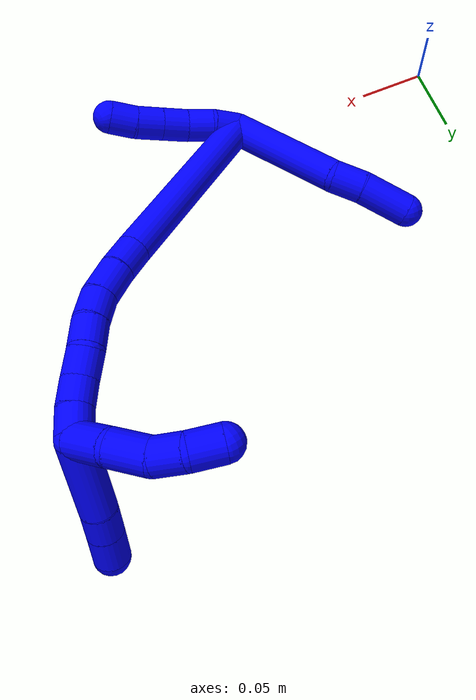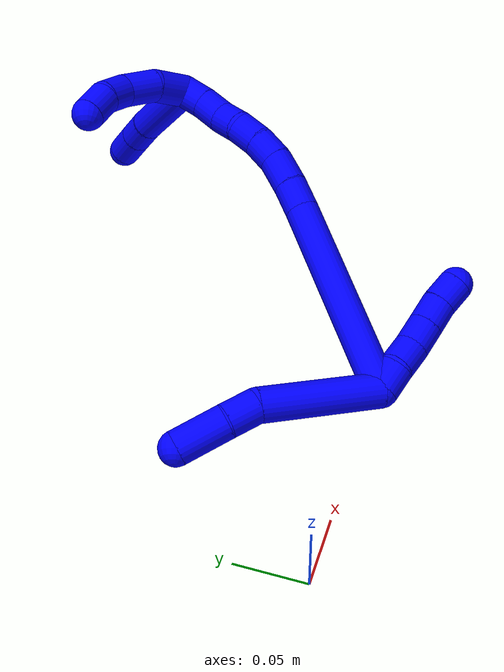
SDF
<sdf version="1.7">
 <world name="default">
  <model name="1">
   <static>0</static>
   <link name="1">
    <collision name="collision-cylinder-e_1_2_8">
     <pose>-0.04181 0.01003 -0.0115 -2.42441 -1.22085 2.15789</pose>
     <geometry><cylinder><radius>0.0125</radius><length>0.089016</length></cylinder></geometry>
     <surface>
      <friction><ode><mu>1.16</mu><mu2>1.16</mu2><slip1>0</slip1><slip2>0</slip2></ode></friction>
      <contact><ode><kp>1e+06</kp><kd>1</kd><max_vel>0</max_vel><min_depth>0.001</min_depth></ode></contact>
     </surface>
    </collision>
    <visual name="visual-cylinder-e_1_2_8">
     <pose>-0.04181 0.01003 -0.0115 -2.42441 -1.22085 2.15789</pose>
     <geometry><cylinder><radius>0.0125</radius><length>0.089016</length></cylinder></geometry>
     <material><ambient>0 0 1 1</ambient></material>
    </visual>
    <collision name="collision-cylinder-e_2_8_9">
     <pose>-0.092787 0.023811 -0.029449 -2.6146 -0.887606 2.10936</pose>
     <geometry><cylinder><radius>0.0125</radius><length>0.023637</length></cylinder></geometry>
     <surface>
      <friction><ode><mu>1.16</mu><mu2>1.16</mu2><slip1>0</slip1><slip2>0</slip2></ode></friction>
      <contact><ode><kp>1e+06</kp><kd>1</kd><max_vel>0</max_vel><min_depth>0.001</min_depth></ode></contact>
     </surface>
    </collision>
    <visual name="visual-cylinder-e_2_8_9">
     <pose>-0.092787 0.023811 -0.029449 -2.6146 -0.887606 2.10936</pose>
     <geometry><cylinder><radius>0.0125</radius><length>0.023637</length></cylinder></geometry>
     <material><ambient>0 0 1 1</ambient></material>
    </visual>
    <collision name="collision-cylinder-e_3_9_6">
     <pose>-0.115533 0.035906 -0.045628 -2.43286 -0.814294 1.72341</pose>
     <geometry><cylinder><radius>0.0125</radius><length>0.037347</length></cylinder></geometry>
     <surface>
      <friction><ode><mu>1.16</mu><mu2>1.16</mu2><slip1>0</slip1><slip2>0</slip2></ode></friction>
      <contact><ode><kp>1e+06</kp><kd>1</kd><max_vel>0</max_vel><min_depth>0.001</min_depth></ode></contact>
     </surface>
    </collision>
    <visual name="visual-cylinder-e_3_9_6">
     <pose>-0.115533 0.035906 -0.045628 -2.43286 -0.814294 1.72341</pose>
     <geometry><cylinder><radius>0.0125</radius><length>0.037347</length></cylinder></geometry>
     <material><ambient>0 0 1 1</ambient></material>
    </visual>
    <collision name="collision-cylinder-e_1_2_10">
     <pose>0.004303 -0.002927 0.008539 0.330256 0.444789 0.075333</pose>
     <geometry><cylinder><radius>0.0125</radius><length>0.02</length></cylinder></geometry>
     <surface>
      <friction><ode><mu>1.16</mu><mu2>1.16</mu2><slip1>0</slip1><slip2>0</slip2></ode></friction>
      <contact><ode><kp>1e+06</kp><kd>1</kd><max_vel>0</max_vel><min_depth>0.001</min_depth></ode></contact>
     </surface>
    </collision>
    <visual name="visual-cylinder-e_1_2_10">
     <pose>0.004303 -0.002927 0.008539 0.330256 0.444789 0.075333</pose>
     <geometry><cylinder><radius>0.0125</radius><length>0.02</length></cylinder></geometry>
     <material><ambient>0 0 1 1</ambient></material>
    </visual>
    <collision name="collision-cylinder-e_2_10_11">
     <pose>0.014051 -0.006655 0.025427 0.095513 0.575843 0.028306</pose>
     <geometry><cylinder><radius>0.0125</radius><length>0.02</length></cylinder></geometry>
     <surface>
      <friction><ode><mu>1.16</mu><mu2>1.16</mu2><slip1>0</slip1><slip2>0</slip2></ode></friction>
      <contact><ode><kp>1e+06</kp><kd>1</kd><max_vel>0</max_vel><min_depth>0.001</min_depth></ode></contact>
     </surface>
    </collision>
    <visual name="visual-cylinder-e_2_10_11">
     <pose>0.014051 -0.006655 0.025427 0.095513 0.575843 0.028306</pose>
     <geometry><cylinder><radius>0.0125</radius><length>0.02</length></cylinder></geometry>
     <material><ambient>0 0 1 1</ambient></material>
    </visual>
    <collision name="collision-cylinder-e_3_11_12">
     <pose>0.023944 -0.009445 0.042509 0.22414 0.460946 0.052802</pose>
     <geometry><cylinder><radius>0.0125</radius><length>0.02</length></cylinder></geometry>
     <surface>
      <friction><ode><mu>1.16</mu><mu2>1.16</mu2><slip1>0</slip1><slip2>0</slip2></ode></friction>
      <contact><ode><kp>1e+06</kp><kd>1</kd><max_vel>0</max_vel><min_depth>0.001</min_depth></ode></contact>
     </surface>
    </collision>
    <visual name="visual-cylinder-e_3_11_12">
     <pose>0.023944 -0.009445 0.042509 0.22414 0.460946 0.052802</pose>
     <geometry><cylinder><radius>0.0125</radius><length>0.02</length></cylinder></geometry>
     <material><ambient>0 0 1 1</ambient></material>
    </visual>
    <collision name="collision-cylinder-e_4_12_13">
     <pose>0.032738 -0.013483 0.060012 0.229343 0.449555 0.052656</pose>
     <geometry><cylinder><radius>0.0125</radius><length>0.02</length></cylinder></geometry>
     <surface>
      <friction><ode><mu>1.16</mu><mu2>1.16</mu2><slip1>0</slip1><slip2>0</slip2></ode></friction>
      <contact><ode><kp>1e+06</kp><kd>1</kd><max_vel>0</max_vel><min_depth>0.001</min_depth></ode></contact>
     </surface>
    </collision>
    <visual name="visual-cylinder-e_4_12_13">
     <pose>0.032738 -0.013483 0.060012 0.229343 0.449555 0.052656</pose>
     <geometry><cylinder><radius>0.0125</radius><length>0.02</length></cylinder></geometry>
     <material><ambient>0 0 1 1</ambient></material>
    </visual>
    <collision name="collision-cylinder-e_5_13_5">
     <pose>0.042293 -0.018574 0.076757 0.36461 0.548012 0.103541</pose>
     <geometry><cylinder><radius>0.0125</radius><length>0.02</length></cylinder></geometry>
     <surface>
      <friction><ode><mu>1.16</mu><mu2>1.16</mu2><slip1>0</slip1><slip2>0</slip2></ode></friction>
      <contact><ode><kp>1e+06</kp><kd>1</kd><max_vel>0</max_vel><min_depth>0.001</min_depth></ode></contact>
     </surface>
    </collision>
    <visual name="visual-cylinder-e_5_13_5">
     <pose>0.042293 -0.018574 0.076757 0.36461 0.548012 0.103541</pose>
     <geometry><cylinder><radius>0.0125</radius><length>0.02</length></cylinder></geometry>
     <material><ambient>0 0 1 1</ambient></material>
    </visual>
    <collision name="collision-cylinder-e_1_2_14">
     <pose>-0.025838 0.015245 0.069662 -0.215442 -0.347616 0.03797</pose>
     <geometry><cylinder><radius>0.0125</radius><length>0.151695</length></cylinder></geometry>
     <surface>
      <friction><ode><mu>1.16</mu><mu2>1.16</mu2><slip1>0</slip1><slip2>0</slip2></ode></friction>
      <contact><ode><kp>1e+06</kp><kd>1</kd><max_vel>0</max_vel><min_depth>0.001</min_depth></ode></contact>
     </surface>
    </collision>
    <visual name="visual-cylinder-e_1_2_14">
     <pose>-0.025838 0.015245 0.069662 -0.215442 -0.347616 0.03797</pose>
     <geometry><cylinder><radius>0.0125</radius><length>0.151695</length></cylinder></geometry>
     <material><ambient>0 0 1 1</ambient></material>
    </visual>
    <collision name="collision-cylinder-e_2_14_15">
     <pose>-0.056238 0.032227 0.149427 -0.170321 -0.418738 0.036274</pose>
     <geometry><cylinder><radius>0.0125</radius><length>0.022439</length></cylinder></geometry>
     <surface>
      <friction><ode><mu>1.16</mu><mu2>1.16</mu2><slip1>0</slip1><slip2>0</slip2></ode></friction>
      <contact><ode><kp>1e+06</kp><kd>1</kd><max_vel>0</max_vel><min_depth>0.001</min_depth></ode></contact>
     </surface>
    </collision>
    <visual name="visual-cylinder-e_2_14_15">
     <pose>-0.056238 0.032227 0.149427 -0.170321 -0.418738 0.036274</pose>
     <geometry><cylinder><radius>0.0125</radius><length>0.022439</length></cylinder></geometry>
     <material><ambient>0 0 1 1</ambient></material>
    </visual>
    <collision name="collision-cylinder-e_3_15_16">
     <pose>-0.066114 0.036924 0.1705 -0.26348 -0.437446 0.05889</pose>
     <geometry><cylinder><radius>0.0125</radius><length>0.02509</length></cylinder></geometry>
     <surface>
      <friction><ode><mu>1.16</mu><mu2>1.16</mu2><slip1>0</slip1><slip2>0</slip2></ode></friction>
      <contact><ode><kp>1e+06</kp><kd>1</kd><max_vel>0</max_vel><min_depth>0.001</min_depth></ode></contact>
     </surface>
    </collision>
    <visual name="visual-cylinder-e_3_15_16">
     <pose>-0.066114 0.036924 0.1705 -0.26348 -0.437446 0.05889</pose>
     <geometry><cylinder><radius>0.0125</radius><length>0.02509</length></cylinder></geometry>
     <material><ambient>0 0 1 1</ambient></material>
    </visual>
    <collision name="collision-cylinder-e_4_16_17">
     <pose>-0.077574 0.042925 0.189148 -0.377214 -0.639879 0.126315</pose>
     <geometry><cylinder><radius>0.0125</radius><length>0.020585</length></cylinder></geometry>
     <surface>
      <friction><ode><mu>1.16</mu><mu2>1.16</mu2><slip1>0</slip1><slip2>0</slip2></ode></friction>
      <contact><ode><kp>1e+06</kp><kd>1</kd><max_vel>0</max_vel><min_depth>0.001</min_depth></ode></contact>
     </surface>
    </collision>
    <visual name="visual-cylinder-e_4_16_17">
     <pose>-0.077574 0.042925 0.189148 -0.377214 -0.639879 0.126315</pose>
     <geometry><cylinder><radius>0.0125</radius><length>0.020585</length></cylinder></geometry>
     <material><ambient>0 0 1 1</ambient></material>
    </visual>
    <collision name="collision-cylinder-e_5_17_18">
     <pose>-0.090198 0.050087 0.203318 -0.565397 -0.699918 0.211249</pose>
     <geometry><cylinder><radius>0.0125</radius><length>0.020111</length></cylinder></geometry>
     <surface>
      <friction><ode><mu>1.16</mu><mu2>1.16</mu2><slip1>0</slip1><slip2>0</slip2></ode></friction>
      <contact><ode><kp>1e+06</kp><kd>1</kd><max_vel>0</max_vel><min_depth>0.001</min_depth></ode></contact>
     </surface>
    </collision>
    <visual name="visual-cylinder-e_5_17_18">
     <pose>-0.090198 0.050087 0.203318 -0.565397 -0.699918 0.211249</pose>
     <geometry><cylinder><radius>0.0125</radius><length>0.020111</length></cylinder></geometry>
     <material><ambient>0 0 1 1</ambient></material>
    </visual>
    <collision name="collision-cylinder-e_6_18_19">
     <pose>-0.10119 0.060599 0.216102 -0.793482 -0.466508 0.198417</pose>
     <geometry><cylinder><radius>0.0125</radius><length>0.020079</length></cylinder></geometry>
     <surface>
      <friction><ode><mu>1.16</mu><mu2>1.16</mu2><slip1>0</slip1><slip2>0</slip2></ode></friction>
      <contact><ode><kp>1e+06</kp><kd>1</kd><max_vel>0</max_vel><min_depth>0.001</min_depth></ode></contact>
     </surface>
    </collision>
    <visual name="visual-cylinder-e_6_18_19">
     <pose>-0.10119 0.060599 0.216102 -0.793482 -0.466508 0.198417</pose>
     <geometry><cylinder><radius>0.0125</radius><length>0.020079</length></cylinder></geometry>
     <material><ambient>0 0 1 1</ambient></material>
    </visual>
    <collision name="collision-cylinder-e_7_19_20">
     <pose>-0.112249 0.070884 0.228873 -0.54087 -0.713266 0.205839</pose>
     <geometry><cylinder><radius>0.0125</radius><length>0.02</length></cylinder></geometry>
     <surface>
      <friction><ode><mu>1.16</mu><mu2>1.16</mu2><slip1>0</slip1><slip2>0</slip2></ode></friction>
      <contact><ode><kp>1e+06</kp><kd>1</kd><max_vel>0</max_vel><min_depth>0.001</min_depth></ode></contact>
     </surface>
    </collision>
    <visual name="visual-cylinder-e_7_19_20">
     <pose>-0.112249 0.070884 0.228873 -0.54087 -0.713266 0.205839</pose>
     <geometry><cylinder><radius>0.0125</radius><length>0.02</length></cylinder></geometry>
     <material><ambient>0 0 1 1</ambient></material>
    </visual>
    <collision name="collision-cylinder-e_8_20_1">
     <pose>-0.126109 0.078849 0.240824 -0.64001 -0.820738 0.286386</pose>
     <geometry><cylinder><radius>0.0125</radius><length>0.02</length></cylinder></geometry>
     <surface>
      <friction><ode><mu>1.16</mu><mu2>1.16</mu2><slip1>0</slip1><slip2>0</slip2></ode></friction>
      <contact><ode><kp>1e+06</kp><kd>1</kd><max_vel>0</max_vel><min_depth>0.001</min_depth></ode></contact>
     </surface>
    </collision>
    <visual name="visual-cylinder-e_8_20_1">
     <pose>-0.126109 0.078849 0.240824 -0.64001 -0.820738 0.286386</pose>
     <geometry><cylinder><radius>0.0125</radius><length>0.02</length></cylinder></geometry>
     <material><ambient>0 0 1 1</ambient></material>
    </visual>
    <collision name="collision-cylinder-e_1_1_21">
     <pose>-0.137477 0.110593 0.244527 -1.63447 -0.145106 0.154616</pose>
     <geometry><cylinder><radius>0.0125</radius><length>0.056047</length></cylinder></geometry>
     <surface>
      <friction><ode><mu>1.16</mu><mu2>1.16</mu2><slip1>0</slip1><slip2>0</slip2></ode></friction>
      <contact><ode><kp>1e+06</kp><kd>1</kd><max_vel>0</max_vel><min_depth>0.001</min_depth></ode></contact>
     </surface>
    </collision>
    <visual name="visual-cylinder-e_1_1_21">
     <pose>-0.137477 0.110593 0.244527 -1.63447 -0.145106 0.154616</pose>
     <geometry><cylinder><radius>0.0125</radius><length>0.056047</length></cylinder></geometry>
     <material><ambient>0 0 1 1</ambient></material>
    </visual>
    <collision name="collision-cylinder-e_2_21_22">
     <pose>-0.142103 0.148348 0.242173 -1.62925 -0.056695 0.060108</pose>
     <geometry><cylinder><radius>0.0125</radius><length>0.020231</length></cylinder></geometry>
     <surface>
      <friction><ode><mu>1.16</mu><mu2>1.16</mu2><slip1>0</slip1><slip2>0</slip2></ode></friction>
      <contact><ode><kp>1e+06</kp><kd>1</kd><max_vel>0</max_vel><min_depth>0.001</min_depth></ode></contact>
     </surface>
    </collision>
    <visual name="visual-cylinder-e_2_21_22">
     <pose>-0.142103 0.148348 0.242173 -1.62925 -0.056695 0.060108</pose>
     <geometry><cylinder><radius>0.0125</radius><length>0.020231</length></cylinder></geometry>
     <material><ambient>0 0 1 1</ambient></material>
    </visual>
    <collision name="collision-cylinder-e_3_22_4">
     <pose>-0.143184 0.170261 0.240922 -1.62657 -0.042836 0.045294</pose>
     <geometry><cylinder><radius>0.0125</radius><length>0.023721</length></cylinder></geometry>
     <surface>
      <friction><ode><mu>1.16</mu><mu2>1.16</mu2><slip1>0</slip1><slip2>0</slip2></ode></friction>
      <contact><ode><kp>1e+06</kp><kd>1</kd><max_vel>0</max_vel><min_depth>0.001</min_depth></ode></contact>
     </surface>
    </collision>
    <visual name="visual-cylinder-e_3_22_4">
     <pose>-0.143184 0.170261 0.240922 -1.62657 -0.042836 0.045294</pose>
     <geometry><cylinder><radius>0.0125</radius><length>0.023721</length></cylinder></geometry>
     <material><ambient>0 0 1 1</ambient></material>
    </visual>
    <collision name="collision-cylinder-e_1_1_23">
     <pose>-0.146823 0.079724 0.242182 2.48066 -1.20017 -2.21215</pose>
     <geometry><cylinder><radius>0.0125</radius><length>0.028748</length></cylinder></geometry>
     <surface>
      <friction><ode><mu>1.16</mu><mu2>1.16</mu2><slip1>0</slip1><slip2>0</slip2></ode></friction>
      <contact><ode><kp>1e+06</kp><kd>1</kd><max_vel>0</max_vel><min_depth>0.001</min_depth></ode></contact>
     </surface>
    </collision>
    <visual name="visual-cylinder-e_1_1_23">
     <pose>-0.146823 0.079724 0.242182 2.48066 -1.20017 -2.21215</pose>
     <geometry><cylinder><radius>0.0125</radius><length>0.028748</length></cylinder></geometry>
     <material><ambient>0 0 1 1</ambient></material>
    </visual>
    <collision name="collision-cylinder-e_2_23_24">
     <pose>-0.172291 0.076541 0.231347 -3.13965 -1.06244 3.13828</pose>
     <geometry><cylinder><radius>0.0125</radius><length>0.027634</length></cylinder></geometry>
     <surface>
      <friction><ode><mu>1.16</mu><mu2>1.16</mu2><slip1>0</slip1><slip2>0</slip2></ode></friction>
      <contact><ode><kp>1e+06</kp><kd>1</kd><max_vel>0</max_vel><min_depth>0.001</min_depth></ode></contact>
     </surface>
    </collision>
    <visual name="visual-cylinder-e_2_23_24">
     <pose>-0.172291 0.076541 0.231347 -3.13965 -1.06244 3.13828</pose>
     <geometry><cylinder><radius>0.0125</radius><length>0.027634</length></cylinder></geometry>
     <material><ambient>0 0 1 1</ambient></material>
    </visual>
    <collision name="collision-cylinder-e_3_24_25">
     <pose>-0.192003 0.073938 0.217559 2.78684 -0.792688 -2.33218</pose>
     <geometry><cylinder><radius>0.0125</radius><length>0.021459</length></cylinder></geometry>
     <surface>
      <friction><ode><mu>1.16</mu><mu2>1.16</mu2><slip1>0</slip1><slip2>0</slip2></ode></friction>
      <contact><ode><kp>1e+06</kp><kd>1</kd><max_vel>0</max_vel><min_depth>0.001</min_depth></ode></contact>
     </surface>
    </collision>
    <visual name="visual-cylinder-e_3_24_25">
     <pose>-0.192003 0.073938 0.217559 2.78684 -0.792688 -2.33218</pose>
     <geometry><cylinder><radius>0.0125</radius><length>0.021459</length></cylinder></geometry>
     <material><ambient>0 0 1 1</ambient></material>
    </visual>
    <collision name="collision-cylinder-e_4_25_3">
     <pose>-0.205102 0.070378 0.2009 3.04353 -0.514986 -2.77312</pose>
     <geometry><cylinder><radius>0.0125</radius><length>0.022159</length></cylinder></geometry>
     <surface>
      <friction><ode><mu>1.16</mu><mu2>1.16</mu2><slip1>0</slip1><slip2>0</slip2></ode></friction>
      <contact><ode><kp>1e+06</kp><kd>1</kd><max_vel>0</max_vel><min_depth>0.001</min_depth></ode></contact>
     </surface>
    </collision>
    <visual name="visual-cylinder-e_4_25_3">
     <pose>-0.205102 0.070378 0.2009 3.04353 -0.514986 -2.77312</pose>
     <geometry><cylinder><radius>0.0125</radius><length>0.022159</length></cylinder></geometry>
     <material><ambient>0 0 1 1</ambient></material>
    </visual>
    <collision name="collision-sphere-3">
     <pose>-0.210559 0.069434 0.191304 0 -0 0</pose>
     <geometry><sphere><radius>0.0125</radius></sphere></geometry>
     <surface>
      <friction><ode><mu>1.16</mu><mu2>1.16</mu2><slip1>0</slip1><slip2>0</slip2></ode></friction>
      <contact><ode><kp>1e+06</kp><kd>1</kd><max_vel>0</max_vel><min_depth>0.001</min_depth></ode></contact>
     </surface>
    </collision>
    <visual name="visual-sphere-3">
     <pose>-0.210559 0.069434 0.191304 0 -0 0</pose>
     <geometry><sphere><radius>0.0125</radius></sphere></geometry>
     <material><ambient>0 0 1 1</ambient></material>
    </visual>
    <collision name="collision-sphere-25">
     <pose>-0.199645 0.071322 0.210496 0 -0 0</pose>
     <geometry><sphere><radius>0.0125</radius></sphere></geometry>
     <surface>
      <friction><ode><mu>1.16</mu><mu2>1.16</mu2><slip1>0</slip1><slip2>0</slip2></ode></friction>
      <contact><ode><kp>1e+06</kp><kd>1</kd><max_vel>0</max_vel><min_depth>0.001</min_depth></ode></contact>
     </surface>
    </collision>
    <visual name="visual-sphere-25">
     <pose>-0.199645 0.071322 0.210496 0 -0 0</pose>
     <geometry><sphere><radius>0.0125</radius></sphere></geometry>
     <material><ambient>0 0 1 1</ambient></material>
    </visual>
    <collision name="collision-sphere-24">
     <pose>-0.184361 0.076554 0.224621 0 -0 0</pose>
     <geometry><sphere><radius>0.0125</radius></sphere></geometry>
     <surface>
      <friction><ode><mu>1.16</mu><mu2>1.16</mu2><slip1>0</slip1><slip2>0</slip2></ode></friction>
      <contact><ode><kp>1e+06</kp><kd>1</kd><max_vel>0</max_vel><min_depth>0.001</min_depth></ode></contact>
     </surface>
    </collision>
    <visual name="visual-sphere-24">
     <pose>-0.184361 0.076554 0.224621 0 -0 0</pose>
     <geometry><sphere><radius>0.0125</radius></sphere></geometry>
     <material><ambient>0 0 1 1</ambient></material>
    </visual>
    <collision name="collision-sphere-23">
     <pose>-0.160221 0.076528 0.238072 0 -0 0</pose>
     <geometry><sphere><radius>0.0125</radius></sphere></geometry>
     <surface>
      <friction><ode><mu>1.16</mu><mu2>1.16</mu2><slip1>0</slip1><slip2>0</slip2></ode></friction>
      <contact><ode><kp>1e+06</kp><kd>1</kd><max_vel>0</max_vel><min_depth>0.001</min_depth></ode></contact>
     </surface>
    </collision>
    <visual name="visual-sphere-23">
     <pose>-0.160221 0.076528 0.238072 0 -0 0</pose>
     <geometry><sphere><radius>0.0125</radius></sphere></geometry>
     <material><ambient>0 0 1 1</ambient></material>
    </visual>
    <collision name="collision-sphere-4">
     <pose>-0.143692 0.182093 0.240262 0 -0 0</pose>
     <geometry><sphere><radius>0.0125</radius></sphere></geometry>
     <surface>
      <friction><ode><mu>1.16</mu><mu2>1.16</mu2><slip1>0</slip1><slip2>0</slip2></ode></friction>
      <contact><ode><kp>1e+06</kp><kd>1</kd><max_vel>0</max_vel><min_depth>0.001</min_depth></ode></contact>
     </surface>
    </collision>
    <visual name="visual-sphere-4">
     <pose>-0.143692 0.182093 0.240262 0 -0 0</pose>
     <geometry><sphere><radius>0.0125</radius></sphere></geometry>
     <material><ambient>0 0 1 1</ambient></material>
    </visual>
    <collision name="collision-sphere-22">
     <pose>-0.142676 0.15843 0.241583 0 -0 0</pose>
     <geometry><sphere><radius>0.0125</radius></sphere></geometry>
     <surface>
      <friction><ode><mu>1.16</mu><mu2>1.16</mu2><slip1>0</slip1><slip2>0</slip2></ode></friction>
      <contact><ode><kp>1e+06</kp><kd>1</kd><max_vel>0</max_vel><min_depth>0.001</min_depth></ode></contact>
     </surface>
    </collision>
    <visual name="visual-sphere-22">
     <pose>-0.142676 0.15843 0.241583 0 -0 0</pose>
     <geometry><sphere><radius>0.0125</radius></sphere></geometry>
     <material><ambient>0 0 1 1</ambient></material>
    </visual>
    <collision name="collision-sphere-21">
     <pose>-0.14153 0.138266 0.242763 0 -0 0</pose>
     <geometry><sphere><radius>0.0125</radius></sphere></geometry>
     <surface>
      <friction><ode><mu>1.16</mu><mu2>1.16</mu2><slip1>0</slip1><slip2>0</slip2></ode></friction>
      <contact><ode><kp>1e+06</kp><kd>1</kd><max_vel>0</max_vel><min_depth>0.001</min_depth></ode></contact>
     </surface>
    </collision>
    <visual name="visual-sphere-21">
     <pose>-0.14153 0.138266 0.242763 0 -0 0</pose>
     <geometry><sphere><radius>0.0125</radius></sphere></geometry>
     <material><ambient>0 0 1 1</ambient></material>
    </visual>
    <collision name="collision-sphere-1">
     <pose>-0.133425 0.08292 0.246292 0 -0 0</pose>
     <geometry><sphere><radius>0.0125</radius></sphere></geometry>
     <surface>
      <friction><ode><mu>1.16</mu><mu2>1.16</mu2><slip1>0</slip1><slip2>0</slip2></ode></friction>
      <contact><ode><kp>1e+06</kp><kd>1</kd><max_vel>0</max_vel><min_depth>0.001</min_depth></ode></contact>
     </surface>
    </collision>
    <visual name="visual-sphere-1">
     <pose>-0.133425 0.08292 0.246292 0 -0 0</pose>
     <geometry><sphere><radius>0.0125</radius></sphere></geometry>
     <material><ambient>0 0 1 1</ambient></material>
    </visual>
    <collision name="collision-sphere-11">
     <pose>0.019496 -0.007454 0.033777 0 -0 0</pose>
     <geometry><sphere><radius>0.0125</radius></sphere></geometry>
     <surface>
      <friction><ode><mu>1.16</mu><mu2>1.16</mu2><slip1>0</slip1><slip2>0</slip2></ode></friction>
      <contact><ode><kp>1e+06</kp><kd>1</kd><max_vel>0</max_vel><min_depth>0.001</min_depth></ode></contact>
     </surface>
    </collision>
    <visual name="visual-sphere-11">
     <pose>0.019496 -0.007454 0.033777 0 -0 0</pose>
     <geometry><sphere><radius>0.0125</radius></sphere></geometry>
     <material><ambient>0 0 1 1</ambient></material>
    </visual>
    <collision name="collision-sphere-10">
     <pose>0.008605 -0.005855 0.017078 0 -0 0</pose>
     <geometry><sphere><radius>0.0125</radius></sphere></geometry>
     <surface>
      <friction><ode><mu>1.16</mu><mu2>1.16</mu2><slip1>0</slip1><slip2>0</slip2></ode></friction>
      <contact><ode><kp>1e+06</kp><kd>1</kd><max_vel>0</max_vel><min_depth>0.001</min_depth></ode></contact>
     </surface>
    </collision>
    <visual name="visual-sphere-10">
     <pose>0.008605 -0.005855 0.017078 0 -0 0</pose>
     <geometry><sphere><radius>0.0125</radius></sphere></geometry>
     <material><ambient>0 0 1 1</ambient></material>
    </visual>
    <collision name="collision-sphere-6">
     <pose>-0.129113 0.044248 -0.055359 0 -0 0</pose>
     <geometry><sphere><radius>0.0125</radius></sphere></geometry>
     <surface>
      <friction><ode><mu>1.16</mu><mu2>1.16</mu2><slip1>0</slip1><slip2>0</slip2></ode></friction>
      <contact><ode><kp>1e+06</kp><kd>1</kd><max_vel>0</max_vel><min_depth>0.001</min_depth></ode></contact>
     </surface>
    </collision>
    <visual name="visual-sphere-6">
     <pose>-0.129113 0.044248 -0.055359 0 -0 0</pose>
     <geometry><sphere><radius>0.0125</radius></sphere></geometry>
     <material><ambient>0 0 1 1</ambient></material>
    </visual>
    <collision name="collision-sphere-9">
     <pose>-0.101953 0.027564 -0.035898 0 -0 0</pose>
     <geometry><sphere><radius>0.0125</radius></sphere></geometry>
     <surface>
      <friction><ode><mu>1.16</mu><mu2>1.16</mu2><slip1>0</slip1><slip2>0</slip2></ode></friction>
      <contact><ode><kp>1e+06</kp><kd>1</kd><max_vel>0</max_vel><min_depth>0.001</min_depth></ode></contact>
     </surface>
    </collision>
    <visual name="visual-sphere-9">
     <pose>-0.101953 0.027564 -0.035898 0 -0 0</pose>
     <geometry><sphere><radius>0.0125</radius></sphere></geometry>
     <material><ambient>0 0 1 1</ambient></material>
    </visual>
    <collision name="collision-sphere-2">
     <geometry><sphere><radius>0.0125</radius></sphere></geometry>
     <surface>
      <friction><ode><mu>1.16</mu><mu2>1.16</mu2><slip1>0</slip1><slip2>0</slip2></ode></friction>
      <contact><ode><kp>1e+06</kp><kd>1</kd><max_vel>0</max_vel><min_depth>0.001</min_depth></ode></contact>
     </surface>
    </collision>
    <visual name="visual-sphere-2">
     <geometry><sphere><radius>0.0125</radius></sphere></geometry>
     <material><ambient>0 0 1 1</ambient></material>
    </visual>
    <collision name="collision-sphere-19">
     <pose>-0.105706 0.06699 0.22239 0 -0 0</pose>
     <geometry><sphere><radius>0.0125</radius></sphere></geometry>
     <surface>
      <friction><ode><mu>1.16</mu><mu2>1.16</mu2><slip1>0</slip1><slip2>0</slip2></ode></friction>
      <contact><ode><kp>1e+06</kp><kd>1</kd><max_vel>0</max_vel><min_depth>0.001</min_depth></ode></contact>
     </surface>
    </collision>
    <visual name="visual-sphere-19">
     <pose>-0.105706 0.06699 0.22239 0 -0 0</pose>
     <geometry><sphere><radius>0.0125</radius></sphere></geometry>
     <material><ambient>0 0 1 1</ambient></material>
    </visual>
    <collision name="collision-sphere-8">
     <pose>-0.083621 0.020059 -0.023001 0 -0 0</pose>
     <geometry><sphere><radius>0.0125</radius></sphere></geometry>
     <surface>
      <friction><ode><mu>1.16</mu><mu2>1.16</mu2><slip1>0</slip1><slip2>0</slip2></ode></friction>
      <contact><ode><kp>1e+06</kp><kd>1</kd><max_vel>0</max_vel><min_depth>0.001</min_depth></ode></contact>
     </surface>
    </collision>
    <visual name="visual-sphere-8">
     <pose>-0.083621 0.020059 -0.023001 0 -0 0</pose>
     <geometry><sphere><radius>0.0125</radius></sphere></geometry>
     <material><ambient>0 0 1 1</ambient></material>
    </visual>
    <collision name="collision-sphere-12">
     <pose>0.028392 -0.011436 0.051241 0 -0 0</pose>
     <geometry><sphere><radius>0.0125</radius></sphere></geometry>
     <surface>
      <friction><ode><mu>1.16</mu><mu2>1.16</mu2><slip1>0</slip1><slip2>0</slip2></ode></friction>
      <contact><ode><kp>1e+06</kp><kd>1</kd><max_vel>0</max_vel><min_depth>0.001</min_depth></ode></contact>
     </surface>
    </collision>
    <visual name="visual-sphere-12">
     <pose>0.028392 -0.011436 0.051241 0 -0 0</pose>
     <geometry><sphere><radius>0.0125</radius></sphere></geometry>
     <material><ambient>0 0 1 1</ambient></material>
    </visual>
    <collision name="collision-sphere-13">
     <pose>0.037083 -0.015531 0.068782 0 -0 0</pose>
     <geometry><sphere><radius>0.0125</radius></sphere></geometry>
     <surface>
      <friction><ode><mu>1.16</mu><mu2>1.16</mu2><slip1>0</slip1><slip2>0</slip2></ode></friction>
      <contact><ode><kp>1e+06</kp><kd>1</kd><max_vel>0</max_vel><min_depth>0.001</min_depth></ode></contact>
     </surface>
    </collision>
    <visual name="visual-sphere-13">
     <pose>0.037083 -0.015531 0.068782 0 -0 0</pose>
     <geometry><sphere><radius>0.0125</radius></sphere></geometry>
     <material><ambient>0 0 1 1</ambient></material>
    </visual>
    <collision name="collision-sphere-5">
     <pose>0.047503 -0.021618 0.084731 0 -0 0</pose>
     <geometry><sphere><radius>0.0125</radius></sphere></geometry>
     <surface>
      <friction><ode><mu>1.16</mu><mu2>1.16</mu2><slip1>0</slip1><slip2>0</slip2></ode></friction>
      <contact><ode><kp>1e+06</kp><kd>1</kd><max_vel>0</max_vel><min_depth>0.001</min_depth></ode></contact>
     </surface>
    </collision>
    <visual name="visual-sphere-5">
     <pose>0.047503 -0.021618 0.084731 0 -0 0</pose>
     <geometry><sphere><radius>0.0125</radius></sphere></geometry>
     <material><ambient>0 0 1 1</ambient></material>
    </visual>
    <collision name="collision-sphere-14">
     <pose>-0.051676 0.03049 0.139325 0 -0 0</pose>
     <geometry><sphere><radius>0.0125</radius></sphere></geometry>
     <surface>
      <friction><ode><mu>1.16</mu><mu2>1.16</mu2><slip1>0</slip1><slip2>0</slip2></ode></friction>
      <contact><ode><kp>1e+06</kp><kd>1</kd><max_vel>0</max_vel><min_depth>0.001</min_depth></ode></contact>
     </surface>
    </collision>
    <visual name="visual-sphere-14">
     <pose>-0.051676 0.03049 0.139325 0 -0 0</pose>
     <geometry><sphere><radius>0.0125</radius></sphere></geometry>
     <material><ambient>0 0 1 1</ambient></material>
    </visual>
    <collision name="collision-sphere-15">
     <pose>-0.0608 0.033964 0.159529 0 -0 0</pose>
     <geometry><sphere><radius>0.0125</radius></sphere></geometry>
     <surface>
      <friction><ode><mu>1.16</mu><mu2>1.16</mu2><slip1>0</slip1><slip2>0</slip2></ode></friction>
      <contact><ode><kp>1e+06</kp><kd>1</kd><max_vel>0</max_vel><min_depth>0.001</min_depth></ode></contact>
     </surface>
    </collision>
    <visual name="visual-sphere-15">
     <pose>-0.0608 0.033964 0.159529 0 -0 0</pose>
     <geometry><sphere><radius>0.0125</radius></sphere></geometry>
     <material><ambient>0 0 1 1</ambient></material>
    </visual>
    <collision name="collision-sphere-16">
     <pose>-0.071429 0.039884 0.181472 0 -0 0</pose>
     <geometry><sphere><radius>0.0125</radius></sphere></geometry>
     <surface>
      <friction><ode><mu>1.16</mu><mu2>1.16</mu2><slip1>0</slip1><slip2>0</slip2></ode></friction>
      <contact><ode><kp>1e+06</kp><kd>1</kd><max_vel>0</max_vel><min_depth>0.001</min_depth></ode></contact>
     </surface>
    </collision>
    <visual name="visual-sphere-16">
     <pose>-0.071429 0.039884 0.181472 0 -0 0</pose>
     <geometry><sphere><radius>0.0125</radius></sphere></geometry>
     <material><ambient>0 0 1 1</ambient></material>
    </visual>
    <collision name="collision-sphere-17">
     <pose>-0.08372 0.045966 0.196824 0 -0 0</pose>
     <geometry><sphere><radius>0.0125</radius></sphere></geometry>
     <surface>
      <friction><ode><mu>1.16</mu><mu2>1.16</mu2><slip1>0</slip1><slip2>0</slip2></ode></friction>
      <contact><ode><kp>1e+06</kp><kd>1</kd><max_vel>0</max_vel><min_depth>0.001</min_depth></ode></contact>
     </surface>
    </collision>
    <visual name="visual-sphere-17">
     <pose>-0.08372 0.045966 0.196824 0 -0 0</pose>
     <geometry><sphere><radius>0.0125</radius></sphere></geometry>
     <material><ambient>0 0 1 1</ambient></material>
    </visual>
    <collision name="collision-sphere-18">
     <pose>-0.096675 0.054207 0.209813 0 -0 0</pose>
     <geometry><sphere><radius>0.0125</radius></sphere></geometry>
     <surface>
      <friction><ode><mu>1.16</mu><mu2>1.16</mu2><slip1>0</slip1><slip2>0</slip2></ode></friction>
      <contact><ode><kp>1e+06</kp><kd>1</kd><max_vel>0</max_vel><min_depth>0.001</min_depth></ode></contact>
     </surface>
    </collision>
    <visual name="visual-sphere-18">
     <pose>-0.096675 0.054207 0.209813 0 -0 0</pose>
     <geometry><sphere><radius>0.0125</radius></sphere></geometry>
     <material><ambient>0 0 1 1</ambient></material>
    </visual>
    <collision name="collision-sphere-20">
     <pose>-0.118792 0.074778 0.235356 0 -0 0</pose>
     <geometry><sphere><radius>0.0125</radius></sphere></geometry>
     <surface>
      <friction><ode><mu>1.16</mu><mu2>1.16</mu2><slip1>0</slip1><slip2>0</slip2></ode></friction>
      <contact><ode><kp>1e+06</kp><kd>1</kd><max_vel>0</max_vel><min_depth>0.001</min_depth></ode></contact>
     </surface>
    </collision>
    <visual name="visual-sphere-20">
     <pose>-0.118792 0.074778 0.235356 0 -0 0</pose>
     <geometry><sphere><radius>0.0125</radius></sphere></geometry>
     <material><ambient>0 0 1 1</ambient></material>
    </visual>
    <inertial>
     <pose>-0.075409 0.043508 0.116734 0 -0 0</pose>
     <mass>0.75</mass>
     <inertia>
      <ixx>0.000309</ixx>
      <ixy>0</ixy>
      <ixz>0</ixz>
      <iyy>0.000429</iyy>
      <iyz>0</iyz>
      <izz>9.7e-05</izz>
     </inertia>
    </inertial>
   </link>
   <pose>0.158044 -0.00562 0.011337 -1.15307 0.453693 -1.13685</pose>
  </model>
 </world>
</sdf>
